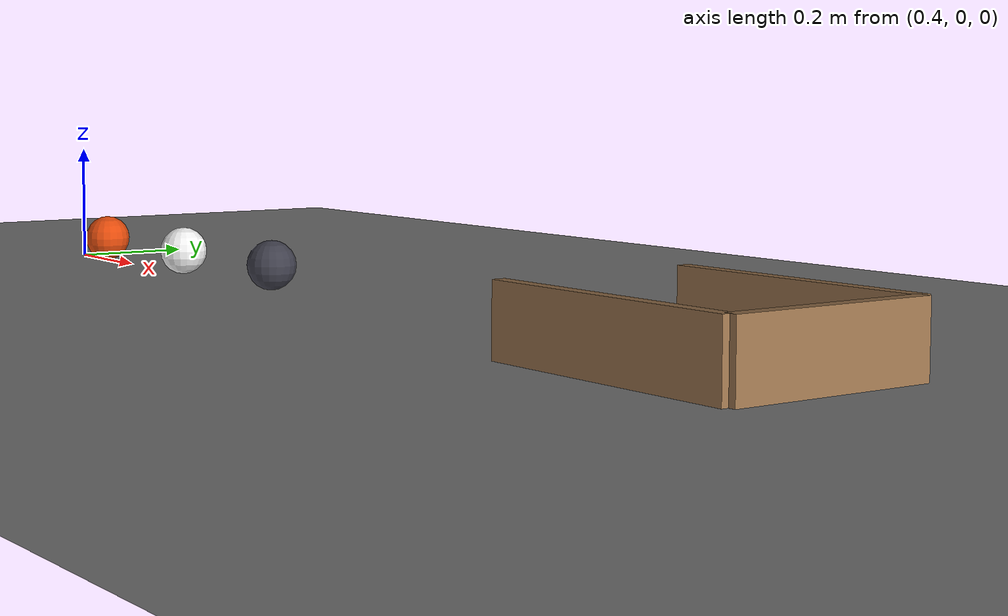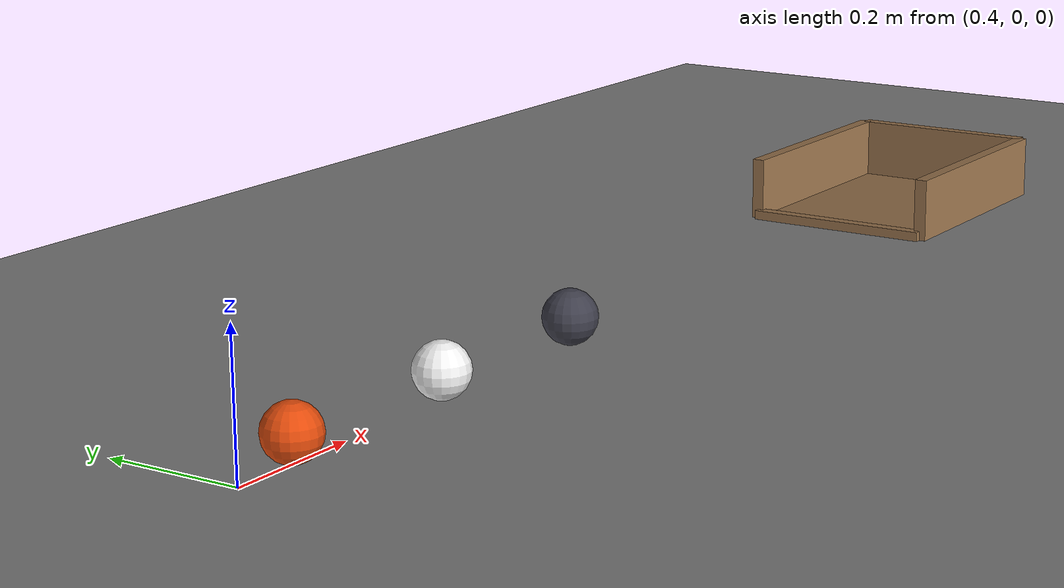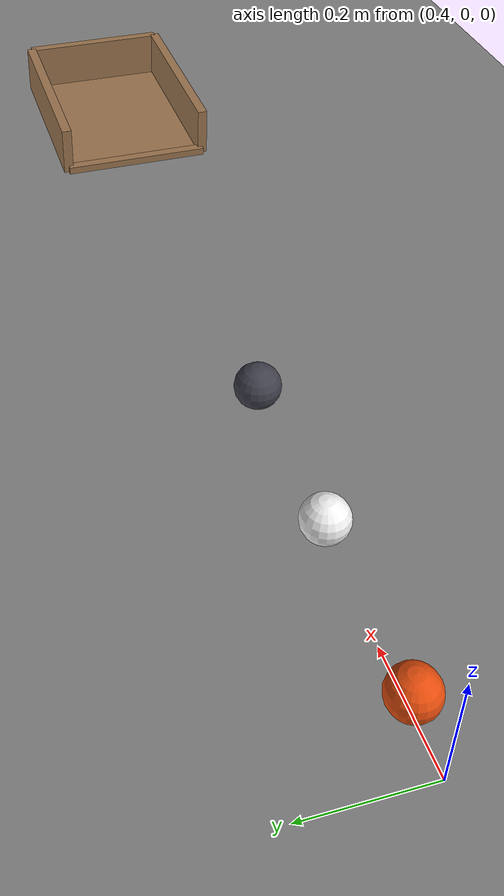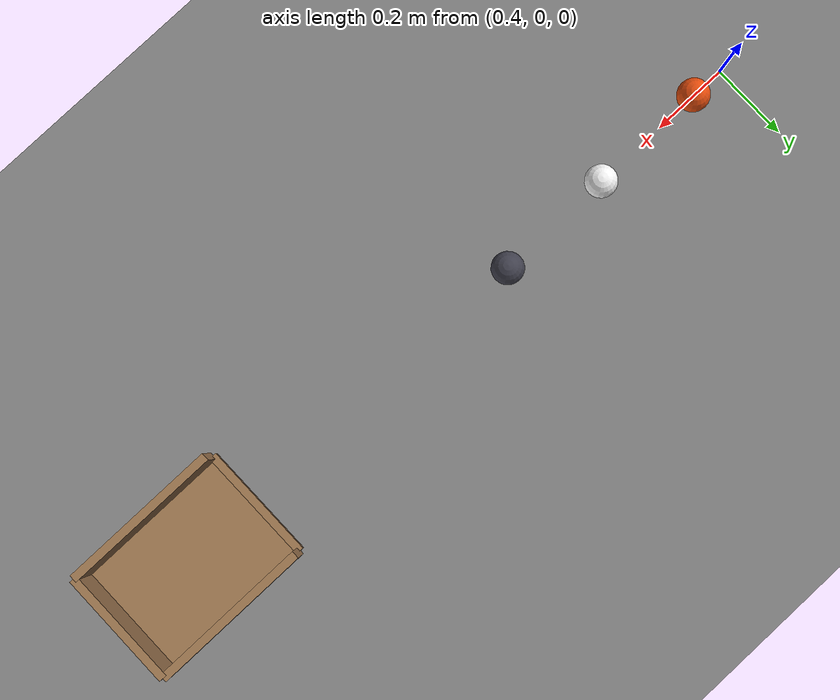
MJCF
<mujoco model="three_balls_in_a_row_into_a_cup">
  <compiler angle="radian"/>
  <option timestep="0.002"/>
  <worldbody>
    <geom name="floor" type="plane" size="6 6 0.1" friction="0.8 0.005 0.002"/>
    <body name="ball1" pos="0.5 0 0.04">
      <freejoint/>
      <geom name="ball1" type="sphere" pos="0 0 0" size="0.04" mass="0.15" condim="6" friction="0.8 0.005 0.002" rgba="0.9 0.3 0.05 1"/>
    </body>
    <body name="ball2" pos="0.8 0 0.04">
      <freejoint/>
      <geom name="ball2" type="sphere" pos="0 0 0" size="0.04" mass="0.15" condim="6" friction="0.8 0.005 0.002" rgba="0.95 0.95 0.95 1"/>
    </body>
    <body name="ball3" pos="1.1 0 0.04">
      <freejoint/>
      <geom name="ball3" type="sphere" pos="0 0 0" size="0.04" mass="0.15" condim="6" friction="0.8 0.005 0.002" rgba="0.25 0.25 0.3 1"/>
    </body>
    <body name="cup">
      <geom name="cup_base" type="box" pos="2.1 0 0.0025" size="0.2 0.15 0.0025" friction="0.8 0.01 0.005" solref="0.01 1" rgba="0.6 0.45 0.3 1"/>
      <geom name="cup_near_wall" type="box" pos="1.9 0 0.0075" size="0.01 0.15 0.0075" friction="0.8 0.01 0.005" solref="0.01 1" rgba="0.6 0.45 0.3 1"/>
      <geom name="cup_far_wall" type="box" pos="2.3 0 0.05" size="0.01 0.15 0.05" friction="0.8 0.01 0.005" solref="0.01 1" rgba="0.6 0.45 0.3 1"/>
      <geom name="cup_left_wall" type="box" pos="2.1 0.15 0.05" size="0.2 0.01 0.05" friction="0.8 0.01 0.005" solref="0.01 1" rgba="0.6 0.45 0.3 1"/>
      <geom name="cup_right_wall" type="box" pos="2.1 -0.15 0.05" size="0.2 0.01 0.05" friction="0.8 0.01 0.005" solref="0.01 1" rgba="0.6 0.45 0.3 1"/>
    </body>
  </worldbody>
  <keyframe>
    <key name="start" qpos="0.5 0 0.04 1 0 0 0 0.8 0 0.04 1 0 0 0 1.1 0 0.04 1 0 0 0" qvel="2.5 0 0 0 62.5 0 0 0 0 0 0 0 0 0 0 0 0 0"/>
  </keyframe>
</mujoco>
